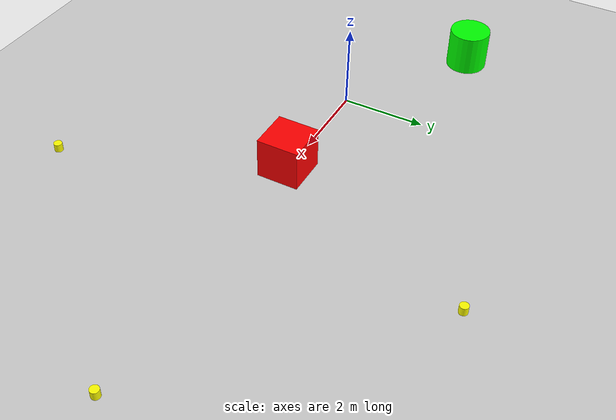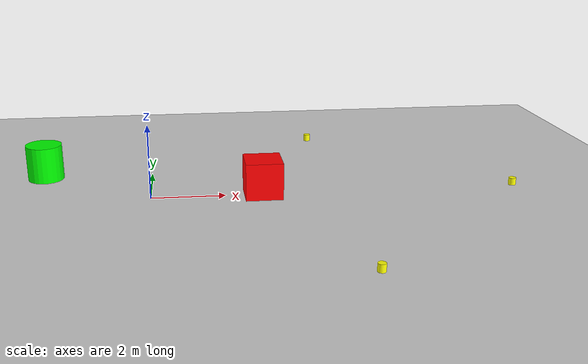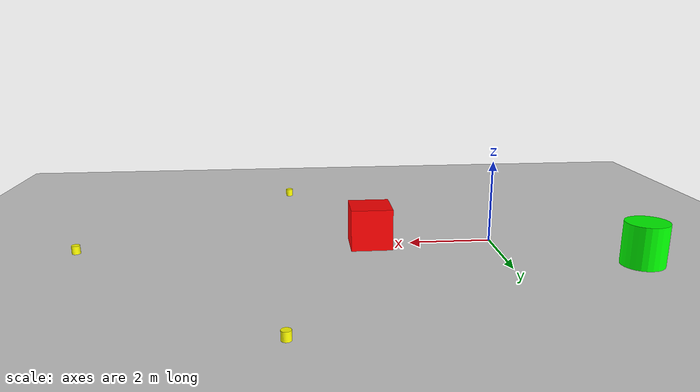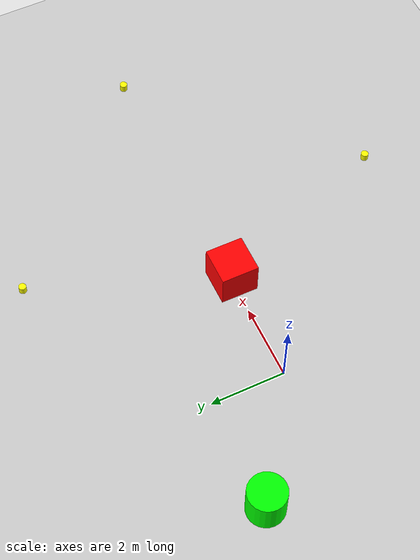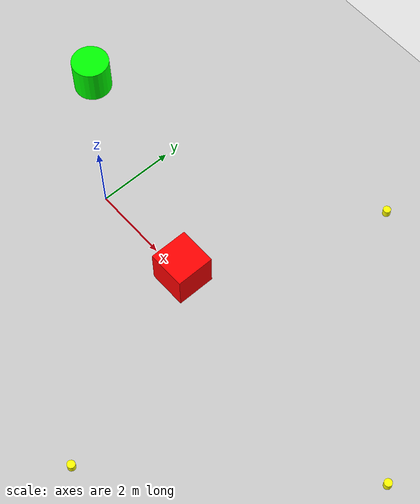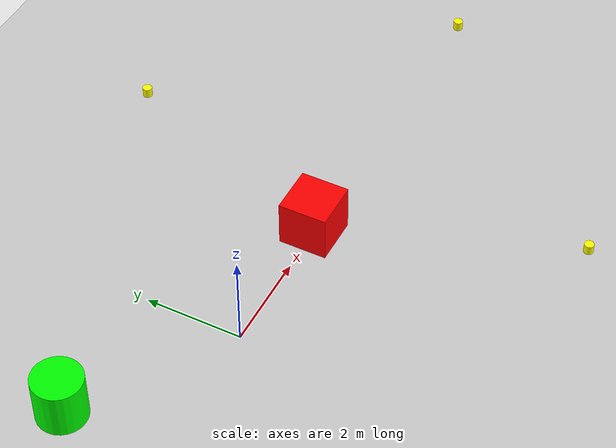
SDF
<?xml version="1.0" ?>
<sdf version="1.6">
  <world name="jetracer_world">

    <!-- A global light source -->
    <include>
      <uri>model://sun</uri>
    </include>

    <!-- A ground plane -->
    <include>
      <uri>model://ground_plane</uri>
    </include>

    <!-- Physics settings optimized for vehicle simulation -->
    <physics type="ode">
      <max_step_size>0.003</max_step_size>
      <real_time_factor>1.0</real_time_factor>
      <real_time_update_rate>333.33</real_time_update_rate>
      <ode>
        <solver>
          <type>quick</type>
          <iters>10</iters>
          <sor>1.3</sor>
        </solver>
        <constraints>
          <cfm>0</cfm>
          <erp>0.2</erp>
          <contact_max_correcting_vel>100</contact_max_correcting_vel>
          <contact_surface_layer>0.001</contact_surface_layer>
        </constraints>
      </ode>
    </physics>

    <!-- Scene settings -->
    <scene>
      <ambient>0.4 0.4 0.4 1.0</ambient>
      <background>0.7 0.7 0.7 1.0</background>
      <shadows>true</shadows>
    </scene>

    <!-- Some obstacles for testing -->
    <model name="obstacle_1">
      <pose>3 0 0.5 0 0 0</pose>
      <static>true</static>
      <link name="link">
        <collision name="collision">
          <geometry>
            <box>
              <size>1 1 1</size>
            </box>
          </geometry>
        </collision>
        <visual name="visual">
          <geometry>
            <box>
              <size>1 1 1</size>
            </box>
          </geometry>
          <material>
            <ambient>1 0 0 1</ambient>
            <diffuse>1 0 0 1</diffuse>
            <specular>0.1 0.1 0.1 1</specular>
          </material>
        </visual>
      </link>
    </model>

    <model name="obstacle_2">
      <pose>-3 2 0.5 0 0 0</pose>
      <static>true</static>
      <link name="link">
        <collision name="collision">
          <geometry>
            <cylinder>
              <radius>0.5</radius>
              <length>1</length>
            </cylinder>
          </geometry>
        </collision>
        <visual name="visual">
          <geometry>
            <cylinder>
              <radius>0.5</radius>
              <length>1</length>
            </cylinder>
          </geometry>
          <material>
            <ambient>0 1 0 1</ambient>
            <diffuse>0 1 0 1</diffuse>
            <specular>0.1 0.1 0.1 1</specular>
          </material>
        </visual>
      </link>
    </model>

    <!-- Some track markers -->
    <model name="marker_1">
      <pose>5 5 0.1 0 0 0</pose>
      <static>true</static>
      <link name="link">
        <collision name="collision">
          <geometry>
            <cylinder>
              <radius>0.1</radius>
              <length>0.2</length>
            </cylinder>
          </geometry>
        </collision>
        <visual name="visual">
          <geometry>
            <cylinder>
              <radius>0.1</radius>
              <length>0.2</length>
            </cylinder>
          </geometry>
          <material>
            <ambient>1 1 0 1</ambient>
            <diffuse>1 1 0 1</diffuse>
            <specular>0.1 0.1 0.1 1</specular>
          </material>
        </visual>
      </link>
    </model>

    <model name="marker_2">
      <pose>10 0 0.1 0 0 0</pose>
      <static>true</static>
      <link name="link">
        <collision name="collision">
          <geometry>
            <cylinder>
              <radius>0.1</radius>
              <length>0.2</length>
            </cylinder>
          </geometry>
        </collision>
        <visual name="visual">
          <geometry>
            <cylinder>
              <radius>0.1</radius>
              <length>0.2</length>
            </cylinder>
          </geometry>
          <material>
            <ambient>1 1 0 1</ambient>
            <diffuse>1 1 0 1</diffuse>
            <specular>0.1 0.1 0.1 1</specular>
          </material>
        </visual>
      </link>
    </model>

    <model name="marker_3">
      <pose>5 -5 0.1 0 0 0</pose>
      <static>true</static>
      <link name="link">
        <collision name="collision">
          <geometry>
            <cylinder>
              <radius>0.1</radius>
              <length>0.2</length>
            </cylinder>
          </geometry>
        </collision>
        <visual name="visual">
          <geometry>
            <cylinder>
              <radius>0.1</radius>
              <length>0.2</length>
            </cylinder>
          </geometry>
          <material>
            <ambient>1 1 0 1</ambient>
            <diffuse>1 1 0 1</diffuse>
            <specular>0.1 0.1 0.1 1</specular>
          </material>
        </visual>
      </link>
    </model>

  </world>
</sdf>
